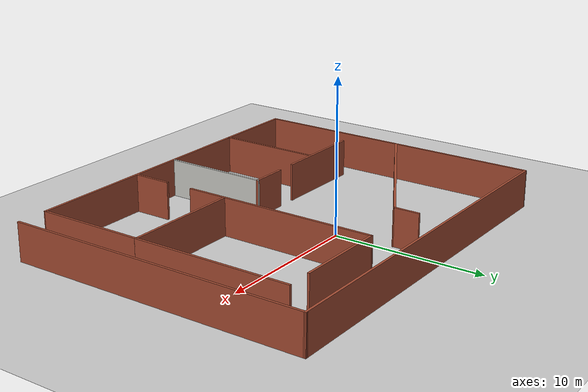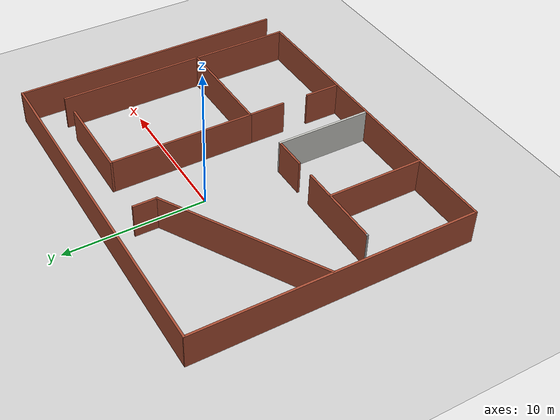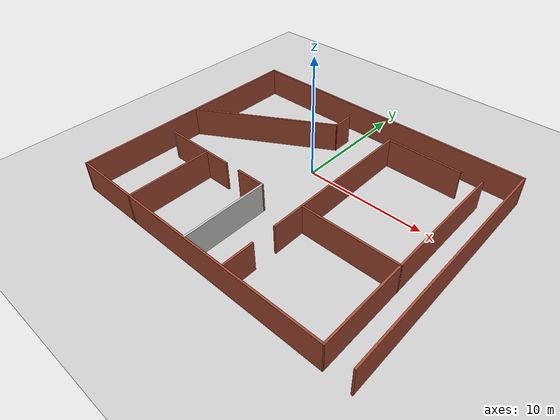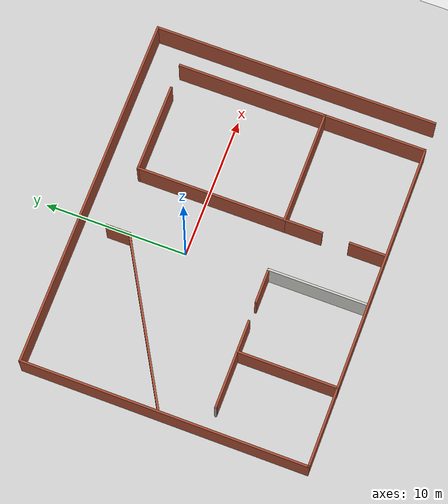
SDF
<sdf version="1.6">
 <world name="default">
  <light name="sun" type="directional">
   <pose>0 0 10 0 -0 0</pose>
   <diffuse>0.8 0.8 0.8 1</diffuse>
   <specular>0.2 0.2 0.2 1</specular>
   <attenuation>
    <range>1000</range>
    <constant>0.9</constant>
    <linear>0.01</linear>
    <quadratic>0.001</quadratic>
   </attenuation>
   <direction>-0.5 0.1 -0.9</direction>
  </light>
  <model name="ground_plane">
   <static>1</static>
   <link name="link">
    <collision name="collision">
     <geometry><plane><normal>0 0 1</normal><size>100 100</size></plane></geometry>
     <surface><friction><ode><mu>100</mu><mu2>50</mu2></ode></friction></surface>
    </collision>
    <visual name="visual">
     <cast_shadows>0</cast_shadows>
     <geometry><plane><normal>0 0 1</normal><size>100 100</size></plane></geometry>
     <material>
      <script><uri>file://media/materials/scripts/gazebo.material</uri><name>Gazebo/Grey</name></script>
     </material>
    </visual>
   </link>
  </model>
  <gravity>0 0 -9.8</gravity>
  <magnetic_field>6e-06 2.3e-05 -4.2e-05</magnetic_field>
  <atmosphere type="adiabatic"/>
  <physics name="default_physics" default="0" type="ode">
   <max_step_size>0.001</max_step_size>
   <real_time_factor>1</real_time_factor>
   <real_time_update_rate>1000</real_time_update_rate>
  </physics>
  <scene><ambient>0.4 0.4 0.4 1</ambient><background>0.7 0.7 0.7 1</background><shadows>1</shadows></scene>
  <audio><device>default</device></audio>
  <spherical_coordinates>
   <surface_model>EARTH_WGS84</surface_model>
   <latitude_deg>0</latitude_deg>
   <longitude_deg>0</longitude_deg>
   <elevation>0</elevation>
   <heading_deg>0</heading_deg>
  </spherical_coordinates>
  <model name="assignment_world">
   <pose>1.25615 -2.72652 0 0 -0 0</pose>
   <link name="Wall_11">
    <collision name="Wall_11_Collision">
     <geometry><box><size>7.25 0.15 2.5</size></box></geometry>
     <pose>0 0 1.25 0 -0 0</pose>
    </collision>
    <visual name="Wall_11_Visual">
     <pose>0 0 1.25 0 -0 0</pose>
     <geometry><box><size>7.25 0.15 2.5</size></box></geometry>
     <material>
      <script><uri>file://media/materials/scripts/gazebo.material</uri><name>Gazebo/Bricks</name></script>
      <ambient>1 1 1 1</ambient>
     </material>
     <meta><layer>0</layer></meta>
    </visual>
    <pose>10.422 -6.36383 0 0 -0 1.5708</pose>
   </link>
   <link name="Wall_12">
    <collision name="Wall_12_Collision">
     <geometry><box><size>8 0.15 2.5</size></box></geometry>
     <pose>0 0 1.25 0 -0 0</pose>
    </collision>
    <visual name="Wall_12_Visual">
     <pose>0 0 1.25 0 -0 0</pose>
     <geometry><box><size>8 0.15 2.5</size></box></geometry>
     <material>
      <script><uri>file://media/materials/scripts/gazebo.material</uri><name>Gazebo/Bricks</name></script>
      <ambient>1 1 1 1</ambient>
     </material>
     <meta><layer>0</layer></meta>
    </visual>
    <pose>6.49702 -2.81383 0 0 -0 3.14159</pose>
   </link>
   <link name="Wall_13">
    <collision name="Wall_13_Collision">
     <geometry><box><size>2.75 0.15 2.5</size></box></geometry>
     <pose>0 0 1.25 0 -0 0</pose>
    </collision>
    <visual name="Wall_13_Visual">
     <pose>0 0 1.25 0 -0 0</pose>
     <geometry><box><size>2.75 0.15 2.5</size></box></geometry>
     <material>
      <script><uri>file://media/materials/scripts/gazebo.material</uri><name>Gazebo/Bricks</name></script>
      <ambient>1 1 1 1</ambient>
     </material>
     <meta><layer>0</layer></meta>
    </visual>
    <pose>2.57202 -4.11383 0 0 -0 -1.5708</pose>
   </link>
   <link name="Wall_15">
    <collision name="Wall_15_Collision">
     <geometry><box><size>2.5 0.15 2.5</size></box></geometry>
     <pose>0 0 1.25 0 -0 0</pose>
    </collision>
    <visual name="Wall_15_Visual">
     <pose>0 0 1.25 0 -0 0</pose>
     <geometry><box><size>2.5 0.15 2.5</size></box></geometry>
     <material>
      <script><uri>file://media/materials/scripts/gazebo.material</uri><name>Gazebo/Bricks</name></script>
      <ambient>1 1 1 1</ambient>
     </material>
     <meta><layer>0</layer></meta>
    </visual>
    <pose>2.56055 -8.598 0 0 -0 -1.5708</pose>
   </link>
   <link name="Wall_17">
    <collision name="Wall_17_Collision">
     <geometry><box><size>10.5 0.15 2.5</size></box></geometry>
     <pose>0 0 1.25 0 -0 0</pose>
    </collision>
    <visual name="Wall_17_Visual">
     <pose>0 0 1.25 0 -0 0</pose>
     <geometry><box><size>10.5 0.15 2.5</size></box></geometry>
     <material>
      <script><uri>file://media/materials/scripts/gazebo.material</uri><name>Gazebo/Bricks</name></script>
      <ambient>1 1 1 1</ambient>
     </material>
     <meta><layer>0</layer></meta>
    </visual>
    <pose>10.422 2.36117 0 0 -0 1.5708</pose>
   </link>
   <link name="Wall_2">
    <collision name="Wall_2_Collision">
     <geometry><box><size>20.0001 0.15 2.5</size></box></geometry>
     <pose>0 0 1.25 0 -0 0</pose>
    </collision>
    <visual name="Wall_2_Visual">
     <pose>0 0 1.25 0 -0 0</pose>
     <geometry><box><size>20.0001 0.15 2.5</size></box></geometry>
     <material>
      <script><uri>file://media/materials/scripts/gazebo.material</uri><name>Gazebo/Bricks</name></script>
      <ambient>1 1 1 1</ambient>
     </material>
     <meta><layer>0</layer></meta>
    </visual>
    <pose>-12.4452 -0.009056 0 0 -0 -1.57314</pose>
   </link>
   <link name="Wall_24">
    <collision name="Wall_24_Collision">
     <geometry><box><size>10.5 0.15 2.5</size></box></geometry>
     <pose>0 0 1.25 0 -0 0</pose>
    </collision>
    <visual name="Wall_24_Visual">
     <pose>0 0 1.25 0 -0 0</pose>
     <geometry><box><size>10.5 0.15 2.5</size></box></geometry>
     <material>
      <script><uri>file://media/materials/scripts/gazebo.material</uri><name>Gazebo/Bricks</name></script>
      <ambient>1 1 1 1</ambient>
     </material>
     <meta><layer>0</layer></meta>
    </visual>
    <pose>2.57202 2.36117 0 0 -0 -1.5708</pose>
   </link>
   <link name="Wall_26">
    <collision name="Wall_26_Collision">
     <geometry><box><size>6.25 0.15 2.5</size></box></geometry>
     <pose>0 0 1.25 0 -0 0</pose>
    </collision>
    <visual name="Wall_26_Visual">
     <pose>0 0 1.25 0 -0 0</pose>
     <geometry><box><size>6.25 0.15 2.5</size></box></geometry>
     <material>
      <script><uri>file://media/materials/scripts/gazebo.material</uri><name>Gazebo/Bricks</name></script>
      <ambient>1 1 1 1</ambient>
     </material>
     <meta><layer>0</layer></meta>
    </visual>
    <pose>5.62202 7.53617 0 0 -0 0</pose>
   </link>
   <link name="Wall_33">
    <collision name="Wall_33_Collision">
     <geometry><box><size>12.25 0.15 2.5</size></box></geometry>
     <pose>0 0 1.25 0 -0 0</pose>
    </collision>
    <visual name="Wall_33_Visual">
     <pose>0 0 1.25 0 -0 0</pose>
     <geometry><box><size>12.25 0.15 2.5</size></box></geometry>
     <material>
      <script><uri>file://media/materials/scripts/gazebo.material</uri><name>Gazebo/Bricks</name></script>
      <ambient>1 1 1 1</ambient>
     </material>
     <meta><layer>0</layer></meta>
    </visual>
    <pose>-7.13474 3.38922 0 0 -0 0.523599</pose>
   </link>
   <link name="Wall_34">
    <collision name="Wall_34_Collision">
     <geometry><box><size>1.75 0.15 2.5</size></box></geometry>
     <pose>0 0 1.25 0 -0 0</pose>
    </collision>
    <visual name="Wall_34_Visual">
     <pose>0 0 1.25 0 -0 0</pose>
     <geometry><box><size>1.75 0.15 2.5</size></box></geometry>
     <material>
      <script><uri>file://media/materials/scripts/gazebo.material</uri><name>Gazebo/Bricks</name></script>
      <ambient>1 1 1 1</ambient>
     </material>
     <meta><layer>0</layer></meta>
    </visual>
    <pose>-1.89529 7.21422 0 0 -0 1.5708</pose>
   </link>
   <link name="Wall_4">
    <collision name="Wall_4_Collision">
     <geometry><box><size>25.0202 0.15 2.5</size></box></geometry>
     <pose>0 0 1.25 0 -0 0</pose>
    </collision>
    <visual name="Wall_4_Visual">
     <pose>0 0 1.25 0 -0 0</pose>
     <geometry><box><size>25.0202 0.15 2.5</size></box></geometry>
     <material>
      <script><uri>file://media/materials/scripts/gazebo.material</uri><name>Gazebo/Bricks</name></script>
      <ambient>1 1 1 1</ambient>
     </material>
     <meta><layer>0</layer></meta>
    </visual>
    <pose>0.033433 9.92606 0 0 -0 0.000813</pose>
   </link>
   <link name="Wall_42">
    <collision name="Wall_42_Collision">
     <geometry><box><size>7 0.15 2.5</size></box></geometry>
     <pose>0 0 1.25 0 -0 0</pose>
    </collision>
    <visual name="Wall_42_Visual">
     <pose>0 0 1.25 0 -0 0</pose>
     <geometry><box><size>7 0.15 2.5</size></box></geometry>
     <material>
      <script><uri>file://media/materials/scripts/gazebo.material</uri><name>Gazebo/CeilingTiled</name></script>
      <ambient>1 1 1 1</ambient>
     </material>
     <meta><layer>0</layer></meta>
    </visual>
    <pose>-1.02106 -6.43398 0 0 -0 1.5708</pose>
   </link>
   <link name="Wall_43">
    <collision name="Wall_43_Collision">
     <geometry><box><size>2.5 0.15 2.5</size></box></geometry>
     <pose>0 0 1.25 0 -0 0</pose>
    </collision>
    <visual name="Wall_43_Visual">
     <pose>0 0 1.25 0 -0 0</pose>
     <geometry><box><size>2.5 0.15 2.5</size></box></geometry>
     <material>
      <script><uri>file://media/materials/scripts/gazebo.material</uri><name>Gazebo/Bricks</name></script>
      <ambient>1 1 1 1</ambient>
     </material>
     <meta><layer>0</layer></meta>
    </visual>
    <pose>-2.19606 -3.00899 0 0 -0 3.14159</pose>
   </link>
   <link name="Wall_45">
    <collision name="Wall_45_Collision">
     <geometry><box><size>7 0.15 2.5</size></box></geometry>
     <pose>0 0 1.25 0 -0 0</pose>
    </collision>
    <visual name="Wall_45_Visual">
     <pose>0 0 1.25 0 -0 0</pose>
     <geometry><box><size>7 0.15 2.5</size></box></geometry>
     <material>
      <script><uri>file://media/materials/scripts/gazebo.material</uri><name>Gazebo/Bricks</name></script>
      <ambient>1 1 1 1</ambient>
     </material>
     <meta><layer>0</layer></meta>
    </visual>
    <pose>-6.94735 -6.51123 0 0 -0 1.5708</pose>
   </link>
   <link name="Wall_47">
    <collision name="Wall_47_Collision">
     <geometry><box><size>6.25 0.15 2.5</size></box></geometry>
     <pose>0 0 1.25 0 -0 0</pose>
    </collision>
    <visual name="Wall_47_Visual">
     <pose>0 0 1.25 0 -0 0</pose>
     <geometry><box><size>6.25 0.15 2.5</size></box></geometry>
     <material>
      <script><uri>file://media/materials/scripts/gazebo.material</uri><name>Gazebo/Bricks</name></script>
      <ambient>1 1 1 1</ambient>
     </material>
     <meta><layer>0</layer></meta>
    </visual>
    <pose>-7.83368 -3.02257 0 0 -0 3.14159</pose>
   </link>
   <link name="Wall_48">
    <collision name="Wall_48_Collision">
     <geometry><box><size>0.15 0.15 2.5</size></box></geometry>
     <pose>0 0 1.25 0 -0 0</pose>
    </collision>
    <visual name="Wall_48_Visual">
     <pose>0 0 1.25 0 -0 0</pose>
     <geometry><box><size>0.15 0.15 2.5</size></box></geometry>
     <material>
      <script><uri>file://media/materials/scripts/gazebo.material</uri><name>Gazebo/Grey</name></script>
      <ambient>1 1 1 1</ambient>
     </material>
     <meta><layer>0</layer></meta>
    </visual>
    <pose>-10.8837 -3.02257 0 0 -0 0</pose>
   </link>
   <link name="Wall_6">
    <collision name="Wall_6_Collision">
     <geometry><box><size>20 0.15 2.5</size></box></geometry>
     <pose>0 0 1.25 0 -0 0</pose>
    </collision>
    <visual name="Wall_6_Visual">
     <pose>0 0 1.25 0 -0 0</pose>
     <geometry><box><size>20 0.15 2.5</size></box></geometry>
     <material>
      <script><uri>file://media/materials/scripts/gazebo.material</uri><name>Gazebo/Bricks</name></script>
      <ambient>1 1 1 1</ambient>
     </material>
     <meta><layer>0</layer></meta>
    </visual>
    <pose>12.4685 0.011172 0 0 -0 -1.5708</pose>
   </link>
   <link name="Wall_8">
    <collision name="Wall_8_Collision">
     <geometry><box><size>23.0202 0.15 2.5</size></box></geometry>
     <pose>0 0 1.25 0 -0 0</pose>
    </collision>
    <visual name="Wall_8_Visual">
     <pose>0 0 1.25 0 -0 0</pose>
     <geometry><box><size>23.0202 0.15 2.5</size></box></geometry>
     <material>
      <script><uri>file://media/materials/scripts/gazebo.material</uri><name>Gazebo/Bricks</name></script>
      <ambient>1 1 1 1</ambient>
     </material>
     <meta><layer>0</layer></meta>
    </visual>
    <pose>-1.01309 -9.92394 0 0 -0 0.000884</pose>
   </link>
   <static>1</static>
  </model>
 </world>
</sdf>
